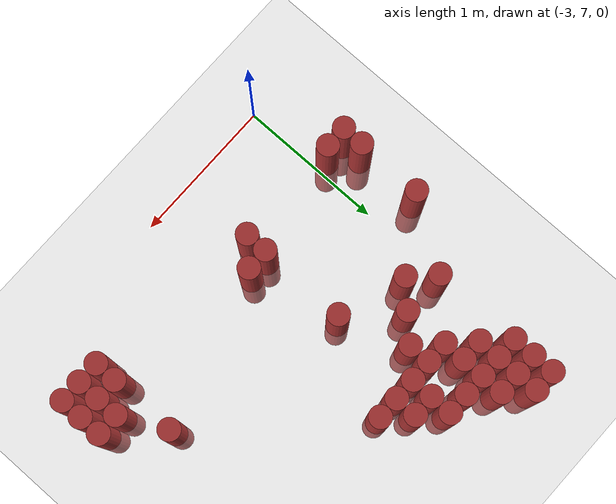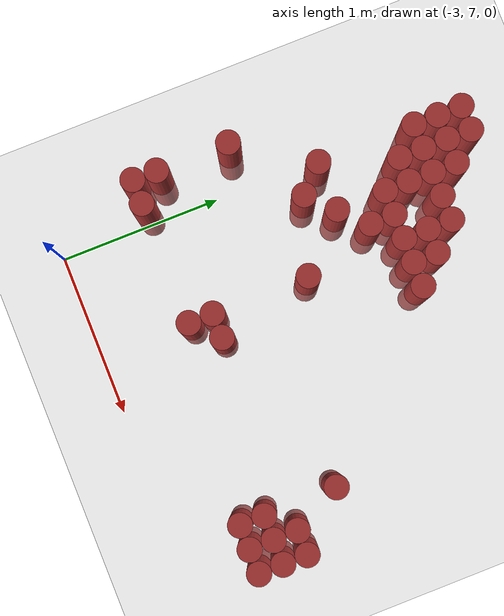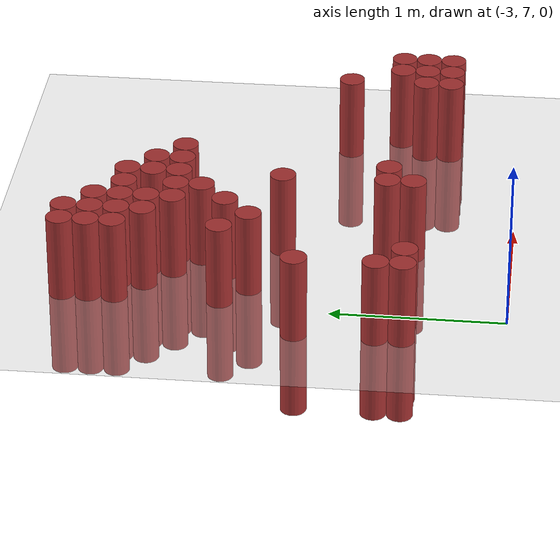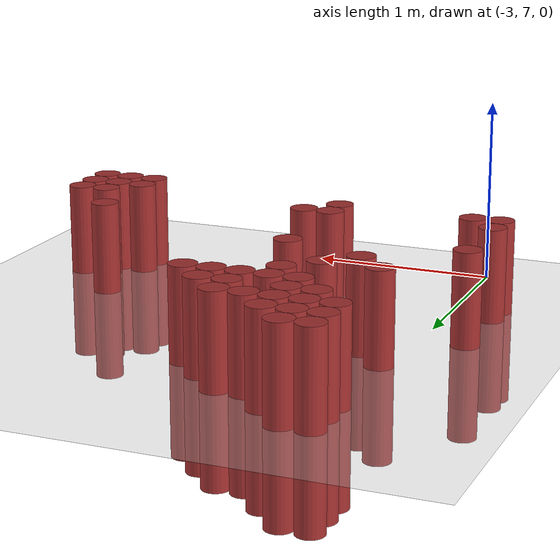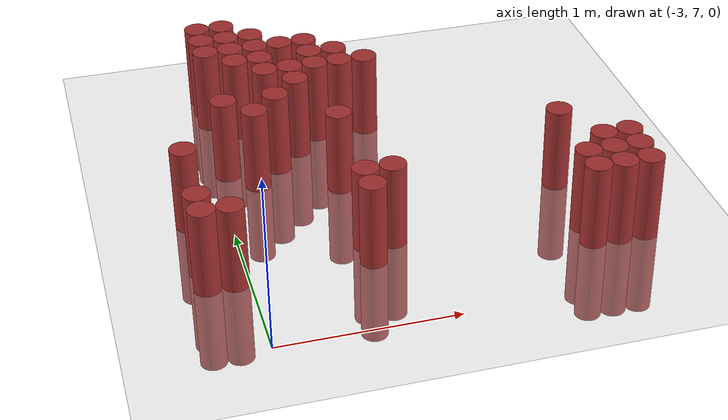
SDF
<sdf version="1.6">
 <world name="default">
  <model name="ground_plane">
   <static>1</static>
   <link name="link">
    <collision name="collision">
     <geometry><plane><normal>0 0 1</normal><size>100 100</size></plane></geometry>
     <surface><friction><ode><mu>100</mu><mu2>50</mu2></ode></friction></surface>
    </collision>
    <visual name="visual">
     <cast_shadows>0</cast_shadows>
     <geometry><plane><normal>0 0 1</normal><size>100 100</size></plane></geometry>
     <material>
      <script><uri>file://media/materials/scripts/gazebo.material</uri><name>Gazebo/Grey</name></script>
     </material>
    </visual>
   </link>
  </model>
  <model name="unit_cylinder_204">
   <static>1</static>
   <pose>-3.225000 7.575000 0.000000 0.000000 0.000000 0.000000</pose>
   <link name="link">
    <inertial>
     <mass>1</mass>
     <inertia><ixx>0.145833</ixx><ixy>0</ixy><ixz>0</ixz><iyy>0.145833</iyy><iyz>0</iyz><izz>0.125</izz></inertia>
    </inertial>
    <collision name="collision">
     <geometry><cylinder><radius>0.075000</radius><length>1</length></cylinder></geometry>
    </collision>
    <visual name="visual">
     <geometry><cylinder><radius>0.075000</radius><length>1</length></cylinder></geometry>
     <material>
      <ambient>0.648000 0.192000 0.192000 1</ambient>
      <diffuse>0.648000 0.192000 0.192000 1</diffuse>
     </material>
     <material>
      <script><name>Gazebo/Grey</name><uri>file://media/materials/scripts/gazebo.material</uri></script>
     </material>
    </visual>
    <sensor name="sensor_contact" type="contact"><contact><collision>collision</collision></contact></sensor>
   </link>
   <plugin filename="gz-sim-touchplugin-system" name="gz::sim::systems::TouchPlugin">
    <target>robot</target>
    <namespace>robot</namespace>
    <time>0.001</time>
    <enabled>true</enabled>
   </plugin>
  </model>
  <model name="unit_cylinder_205">
   <static>1</static>
   <pose>-3.225000 7.725000 0.000000 0.000000 0.000000 0.000000</pose>
   <link name="link">
    <inertial>
     <mass>1</mass>
     <inertia><ixx>0.145833</ixx><ixy>0</ixy><ixz>0</ixz><iyy>0.145833</iyy><iyz>0</iyz><izz>0.125</izz></inertia>
    </inertial>
    <collision name="collision">
     <geometry><cylinder><radius>0.075000</radius><length>1</length></cylinder></geometry>
    </collision>
    <visual name="visual">
     <geometry><cylinder><radius>0.075000</radius><length>1</length></cylinder></geometry>
     <material>
      <ambient>0.648000 0.192000 0.192000 1</ambient>
      <diffuse>0.648000 0.192000 0.192000 1</diffuse>
     </material>
     <material>
      <script><name>Gazebo/Grey</name><uri>file://media/materials/scripts/gazebo.material</uri></script>
     </material>
    </visual>
    <sensor name="sensor_contact" type="contact"><contact><collision>collision</collision></contact></sensor>
   </link>
   <plugin filename="gz-sim-touchplugin-system" name="gz::sim::systems::TouchPlugin">
    <target>robot</target>
    <namespace>robot</namespace>
    <time>0.001</time>
    <enabled>true</enabled>
   </plugin>
  </model>
  <model name="unit_cylinder_206">
   <static>1</static>
   <pose>-3.225000 8.175000 0.000000 0.000000 0.000000 0.000000</pose>
   <link name="link">
    <inertial>
     <mass>1</mass>
     <inertia><ixx>0.145833</ixx><ixy>0</ixy><ixz>0</ixz><iyy>0.145833</iyy><iyz>0</iyz><izz>0.125</izz></inertia>
    </inertial>
    <collision name="collision">
     <geometry><cylinder><radius>0.075000</radius><length>1</length></cylinder></geometry>
    </collision>
    <visual name="visual">
     <geometry><cylinder><radius>0.075000</radius><length>1</length></cylinder></geometry>
     <material>
      <ambient>0.648000 0.192000 0.192000 1</ambient>
      <diffuse>0.648000 0.192000 0.192000 1</diffuse>
     </material>
     <material>
      <script><name>Gazebo/Grey</name><uri>file://media/materials/scripts/gazebo.material</uri></script>
     </material>
    </visual>
    <sensor name="sensor_contact" type="contact"><contact><collision>collision</collision></contact></sensor>
   </link>
   <plugin filename="gz-sim-touchplugin-system" name="gz::sim::systems::TouchPlugin">
    <target>robot</target>
    <namespace>robot</namespace>
    <time>0.001</time>
    <enabled>true</enabled>
   </plugin>
  </model>
  <model name="unit_cylinder_209">
   <static>1</static>
   <pose>-3.075000 7.575000 0.000000 0.000000 0.000000 0.000000</pose>
   <link name="link">
    <inertial>
     <mass>1</mass>
     <inertia><ixx>0.145833</ixx><ixy>0</ixy><ixz>0</ixz><iyy>0.145833</iyy><iyz>0</iyz><izz>0.125</izz></inertia>
    </inertial>
    <collision name="collision">
     <geometry><cylinder><radius>0.075000</radius><length>1</length></cylinder></geometry>
    </collision>
    <visual name="visual">
     <geometry><cylinder><radius>0.075000</radius><length>1</length></cylinder></geometry>
     <material>
      <ambient>0.648000 0.192000 0.192000 1</ambient>
      <diffuse>0.648000 0.192000 0.192000 1</diffuse>
     </material>
     <material>
      <script><name>Gazebo/Grey</name><uri>file://media/materials/scripts/gazebo.material</uri></script>
     </material>
    </visual>
    <sensor name="sensor_contact" type="contact"><contact><collision>collision</collision></contact></sensor>
   </link>
   <plugin filename="gz-sim-touchplugin-system" name="gz::sim::systems::TouchPlugin">
    <target>robot</target>
    <namespace>robot</namespace>
    <time>0.001</time>
    <enabled>true</enabled>
   </plugin>
  </model>
  <model name="unit_cylinder_214">
   <static>1</static>
   <pose>-2.925000 8.625000 0.000000 0.000000 0.000000 0.000000</pose>
   <link name="link">
    <inertial>
     <mass>1</mass>
     <inertia><ixx>0.145833</ixx><ixy>0</ixy><ixz>0</ixz><iyy>0.145833</iyy><iyz>0</iyz><izz>0.125</izz></inertia>
    </inertial>
    <collision name="collision">
     <geometry><cylinder><radius>0.075000</radius><length>1</length></cylinder></geometry>
    </collision>
    <visual name="visual">
     <geometry><cylinder><radius>0.075000</radius><length>1</length></cylinder></geometry>
     <material>
      <ambient>0.648000 0.192000 0.192000 1</ambient>
      <diffuse>0.648000 0.192000 0.192000 1</diffuse>
     </material>
     <material>
      <script><name>Gazebo/Grey</name><uri>file://media/materials/scripts/gazebo.material</uri></script>
     </material>
    </visual>
    <sensor name="sensor_contact" type="contact"><contact><collision>collision</collision></contact></sensor>
   </link>
   <plugin filename="gz-sim-touchplugin-system" name="gz::sim::systems::TouchPlugin">
    <target>robot</target>
    <namespace>robot</namespace>
    <time>0.001</time>
    <enabled>true</enabled>
   </plugin>
  </model>
  <model name="unit_cylinder_215">
   <static>1</static>
   <pose>-2.925000 9.225000 0.000000 0.000000 0.000000 0.000000</pose>
   <link name="link">
    <inertial>
     <mass>1</mass>
     <inertia><ixx>0.145833</ixx><ixy>0</ixy><ixz>0</ixz><iyy>0.145833</iyy><iyz>0</iyz><izz>0.125</izz></inertia>
    </inertial>
    <collision name="collision">
     <geometry><cylinder><radius>0.075000</radius><length>1</length></cylinder></geometry>
    </collision>
    <visual name="visual">
     <geometry><cylinder><radius>0.075000</radius><length>1</length></cylinder></geometry>
     <material>
      <ambient>0.648000 0.192000 0.192000 1</ambient>
      <diffuse>0.648000 0.192000 0.192000 1</diffuse>
     </material>
     <material>
      <script><name>Gazebo/Grey</name><uri>file://media/materials/scripts/gazebo.material</uri></script>
     </material>
    </visual>
    <sensor name="sensor_contact" type="contact"><contact><collision>collision</collision></contact></sensor>
   </link>
   <plugin filename="gz-sim-touchplugin-system" name="gz::sim::systems::TouchPlugin">
    <target>robot</target>
    <namespace>robot</namespace>
    <time>0.001</time>
    <enabled>true</enabled>
   </plugin>
  </model>
  <model name="unit_cylinder_216">
   <static>1</static>
   <pose>-2.925000 9.375000 0.000000 0.000000 0.000000 0.000000</pose>
   <link name="link">
    <inertial>
     <mass>1</mass>
     <inertia><ixx>0.145833</ixx><ixy>0</ixy><ixz>0</ixz><iyy>0.145833</iyy><iyz>0</iyz><izz>0.125</izz></inertia>
    </inertial>
    <collision name="collision">
     <geometry><cylinder><radius>0.075000</radius><length>1</length></cylinder></geometry>
    </collision>
    <visual name="visual">
     <geometry><cylinder><radius>0.075000</radius><length>1</length></cylinder></geometry>
     <material>
      <ambient>0.648000 0.192000 0.192000 1</ambient>
      <diffuse>0.648000 0.192000 0.192000 1</diffuse>
     </material>
     <material>
      <script><name>Gazebo/Grey</name><uri>file://media/materials/scripts/gazebo.material</uri></script>
     </material>
    </visual>
    <sensor name="sensor_contact" type="contact"><contact><collision>collision</collision></contact></sensor>
   </link>
   <plugin filename="gz-sim-touchplugin-system" name="gz::sim::systems::TouchPlugin">
    <target>robot</target>
    <namespace>robot</namespace>
    <time>0.001</time>
    <enabled>true</enabled>
   </plugin>
  </model>
  <model name="unit_cylinder_217">
   <static>1</static>
   <pose>-2.925000 9.525000 0.000000 0.000000 0.000000 0.000000</pose>
   <link name="link">
    <inertial>
     <mass>1</mass>
     <inertia><ixx>0.145833</ixx><ixy>0</ixy><ixz>0</ixz><iyy>0.145833</iyy><iyz>0</iyz><izz>0.125</izz></inertia>
    </inertial>
    <collision name="collision">
     <geometry><cylinder><radius>0.075000</radius><length>1</length></cylinder></geometry>
    </collision>
    <visual name="visual">
     <geometry><cylinder><radius>0.075000</radius><length>1</length></cylinder></geometry>
     <material>
      <ambient>0.648000 0.192000 0.192000 1</ambient>
      <diffuse>0.648000 0.192000 0.192000 1</diffuse>
     </material>
     <material>
      <script><name>Gazebo/Grey</name><uri>file://media/materials/scripts/gazebo.material</uri></script>
     </material>
    </visual>
    <sensor name="sensor_contact" type="contact"><contact><collision>collision</collision></contact></sensor>
   </link>
   <plugin filename="gz-sim-touchplugin-system" name="gz::sim::systems::TouchPlugin">
    <target>robot</target>
    <namespace>robot</namespace>
    <time>0.001</time>
    <enabled>true</enabled>
   </plugin>
  </model>
  <model name="unit_cylinder_225">
   <static>1</static>
   <pose>-2.775000 8.475000 0.000000 0.000000 0.000000 0.000000</pose>
   <link name="link">
    <inertial>
     <mass>1</mass>
     <inertia><ixx>0.145833</ixx><ixy>0</ixy><ixz>0</ixz><iyy>0.145833</iyy><iyz>0</iyz><izz>0.125</izz></inertia>
    </inertial>
    <collision name="collision">
     <geometry><cylinder><radius>0.075000</radius><length>1</length></cylinder></geometry>
    </collision>
    <visual name="visual">
     <geometry><cylinder><radius>0.075000</radius><length>1</length></cylinder></geometry>
     <material>
      <ambient>0.648000 0.192000 0.192000 1</ambient>
      <diffuse>0.648000 0.192000 0.192000 1</diffuse>
     </material>
     <material>
      <script><name>Gazebo/Grey</name><uri>file://media/materials/scripts/gazebo.material</uri></script>
     </material>
    </visual>
    <sensor name="sensor_contact" type="contact"><contact><collision>collision</collision></contact></sensor>
   </link>
   <plugin filename="gz-sim-touchplugin-system" name="gz::sim::systems::TouchPlugin">
    <target>robot</target>
    <namespace>robot</namespace>
    <time>0.001</time>
    <enabled>true</enabled>
   </plugin>
  </model>
  <model name="unit_cylinder_226">
   <static>1</static>
   <pose>-2.775000 9.075000 0.000000 0.000000 0.000000 0.000000</pose>
   <link name="link">
    <inertial>
     <mass>1</mass>
     <inertia><ixx>0.145833</ixx><ixy>0</ixy><ixz>0</ixz><iyy>0.145833</iyy><iyz>0</iyz><izz>0.125</izz></inertia>
    </inertial>
    <collision name="collision">
     <geometry><cylinder><radius>0.075000</radius><length>1</length></cylinder></geometry>
    </collision>
    <visual name="visual">
     <geometry><cylinder><radius>0.075000</radius><length>1</length></cylinder></geometry>
     <material>
      <ambient>0.648000 0.192000 0.192000 1</ambient>
      <diffuse>0.648000 0.192000 0.192000 1</diffuse>
     </material>
     <material>
      <script><name>Gazebo/Grey</name><uri>file://media/materials/scripts/gazebo.material</uri></script>
     </material>
    </visual>
    <sensor name="sensor_contact" type="contact"><contact><collision>collision</collision></contact></sensor>
   </link>
   <plugin filename="gz-sim-touchplugin-system" name="gz::sim::systems::TouchPlugin">
    <target>robot</target>
    <namespace>robot</namespace>
    <time>0.001</time>
    <enabled>true</enabled>
   </plugin>
  </model>
  <model name="unit_cylinder_227">
   <static>1</static>
   <pose>-2.775000 9.225000 0.000000 0.000000 0.000000 0.000000</pose>
   <link name="link">
    <inertial>
     <mass>1</mass>
     <inertia><ixx>0.145833</ixx><ixy>0</ixy><ixz>0</ixz><iyy>0.145833</iyy><iyz>0</iyz><izz>0.125</izz></inertia>
    </inertial>
    <collision name="collision">
     <geometry><cylinder><radius>0.075000</radius><length>1</length></cylinder></geometry>
    </collision>
    <visual name="visual">
     <geometry><cylinder><radius>0.075000</radius><length>1</length></cylinder></geometry>
     <material>
      <ambient>0.648000 0.192000 0.192000 1</ambient>
      <diffuse>0.648000 0.192000 0.192000 1</diffuse>
     </material>
     <material>
      <script><name>Gazebo/Grey</name><uri>file://media/materials/scripts/gazebo.material</uri></script>
     </material>
    </visual>
    <sensor name="sensor_contact" type="contact"><contact><collision>collision</collision></contact></sensor>
   </link>
   <plugin filename="gz-sim-touchplugin-system" name="gz::sim::systems::TouchPlugin">
    <target>robot</target>
    <namespace>robot</namespace>
    <time>0.001</time>
    <enabled>true</enabled>
   </plugin>
  </model>
  <model name="unit_cylinder_228">
   <static>1</static>
   <pose>-2.775000 9.375000 0.000000 0.000000 0.000000 0.000000</pose>
   <link name="link">
    <inertial>
     <mass>1</mass>
     <inertia><ixx>0.145833</ixx><ixy>0</ixy><ixz>0</ixz><iyy>0.145833</iyy><iyz>0</iyz><izz>0.125</izz></inertia>
    </inertial>
    <collision name="collision">
     <geometry><cylinder><radius>0.075000</radius><length>1</length></cylinder></geometry>
    </collision>
    <visual name="visual">
     <geometry><cylinder><radius>0.075000</radius><length>1</length></cylinder></geometry>
     <material>
      <ambient>0.648000 0.192000 0.192000 1</ambient>
      <diffuse>0.648000 0.192000 0.192000 1</diffuse>
     </material>
     <material>
      <script><name>Gazebo/Grey</name><uri>file://media/materials/scripts/gazebo.material</uri></script>
     </material>
    </visual>
    <sensor name="sensor_contact" type="contact"><contact><collision>collision</collision></contact></sensor>
   </link>
   <plugin filename="gz-sim-touchplugin-system" name="gz::sim::systems::TouchPlugin">
    <target>robot</target>
    <namespace>robot</namespace>
    <time>0.001</time>
    <enabled>true</enabled>
   </plugin>
  </model>
  <model name="unit_cylinder_229">
   <static>1</static>
   <pose>-2.775000 9.525000 0.000000 0.000000 0.000000 0.000000</pose>
   <link name="link">
    <inertial>
     <mass>1</mass>
     <inertia><ixx>0.145833</ixx><ixy>0</ixy><ixz>0</ixz><iyy>0.145833</iyy><iyz>0</iyz><izz>0.125</izz></inertia>
    </inertial>
    <collision name="collision">
     <geometry><cylinder><radius>0.075000</radius><length>1</length></cylinder></geometry>
    </collision>
    <visual name="visual">
     <geometry><cylinder><radius>0.075000</radius><length>1</length></cylinder></geometry>
     <material>
      <ambient>0.648000 0.192000 0.192000 1</ambient>
      <diffuse>0.648000 0.192000 0.192000 1</diffuse>
     </material>
     <material>
      <script><name>Gazebo/Grey</name><uri>file://media/materials/scripts/gazebo.material</uri></script>
     </material>
    </visual>
    <sensor name="sensor_contact" type="contact"><contact><collision>collision</collision></contact></sensor>
   </link>
   <plugin filename="gz-sim-touchplugin-system" name="gz::sim::systems::TouchPlugin">
    <target>robot</target>
    <namespace>robot</namespace>
    <time>0.001</time>
    <enabled>true</enabled>
   </plugin>
  </model>
  <model name="unit_cylinder_237">
   <static>1</static>
   <pose>-2.625000 8.625000 0.000000 0.000000 0.000000 0.000000</pose>
   <link name="link">
    <inertial>
     <mass>1</mass>
     <inertia><ixx>0.145833</ixx><ixy>0</ixy><ixz>0</ixz><iyy>0.145833</iyy><iyz>0</iyz><izz>0.125</izz></inertia>
    </inertial>
    <collision name="collision">
     <geometry><cylinder><radius>0.075000</radius><length>1</length></cylinder></geometry>
    </collision>
    <visual name="visual">
     <geometry><cylinder><radius>0.075000</radius><length>1</length></cylinder></geometry>
     <material>
      <ambient>0.648000 0.192000 0.192000 1</ambient>
      <diffuse>0.648000 0.192000 0.192000 1</diffuse>
     </material>
     <material>
      <script><name>Gazebo/Grey</name><uri>file://media/materials/scripts/gazebo.material</uri></script>
     </material>
    </visual>
    <sensor name="sensor_contact" type="contact"><contact><collision>collision</collision></contact></sensor>
   </link>
   <plugin filename="gz-sim-touchplugin-system" name="gz::sim::systems::TouchPlugin">
    <target>robot</target>
    <namespace>robot</namespace>
    <time>0.001</time>
    <enabled>true</enabled>
   </plugin>
  </model>
  <model name="unit_cylinder_238">
   <static>1</static>
   <pose>-2.625000 8.925000 0.000000 0.000000 0.000000 0.000000</pose>
   <link name="link">
    <inertial>
     <mass>1</mass>
     <inertia><ixx>0.145833</ixx><ixy>0</ixy><ixz>0</ixz><iyy>0.145833</iyy><iyz>0</iyz><izz>0.125</izz></inertia>
    </inertial>
    <collision name="collision">
     <geometry><cylinder><radius>0.075000</radius><length>1</length></cylinder></geometry>
    </collision>
    <visual name="visual">
     <geometry><cylinder><radius>0.075000</radius><length>1</length></cylinder></geometry>
     <material>
      <ambient>0.648000 0.192000 0.192000 1</ambient>
      <diffuse>0.648000 0.192000 0.192000 1</diffuse>
     </material>
     <material>
      <script><name>Gazebo/Grey</name><uri>file://media/materials/scripts/gazebo.material</uri></script>
     </material>
    </visual>
    <sensor name="sensor_contact" type="contact"><contact><collision>collision</collision></contact></sensor>
   </link>
   <plugin filename="gz-sim-touchplugin-system" name="gz::sim::systems::TouchPlugin">
    <target>robot</target>
    <namespace>robot</namespace>
    <time>0.001</time>
    <enabled>true</enabled>
   </plugin>
  </model>
  <model name="unit_cylinder_239">
   <static>1</static>
   <pose>-2.625000 9.075000 0.000000 0.000000 0.000000 0.000000</pose>
   <link name="link">
    <inertial>
     <mass>1</mass>
     <inertia><ixx>0.145833</ixx><ixy>0</ixy><ixz>0</ixz><iyy>0.145833</iyy><iyz>0</iyz><izz>0.125</izz></inertia>
    </inertial>
    <collision name="collision">
     <geometry><cylinder><radius>0.075000</radius><length>1</length></cylinder></geometry>
    </collision>
    <visual name="visual">
     <geometry><cylinder><radius>0.075000</radius><length>1</length></cylinder></geometry>
     <material>
      <ambient>0.648000 0.192000 0.192000 1</ambient>
      <diffuse>0.648000 0.192000 0.192000 1</diffuse>
     </material>
     <material>
      <script><name>Gazebo/Grey</name><uri>file://media/materials/scripts/gazebo.material</uri></script>
     </material>
    </visual>
    <sensor name="sensor_contact" type="contact"><contact><collision>collision</collision></contact></sensor>
   </link>
   <plugin filename="gz-sim-touchplugin-system" name="gz::sim::systems::TouchPlugin">
    <target>robot</target>
    <namespace>robot</namespace>
    <time>0.001</time>
    <enabled>true</enabled>
   </plugin>
  </model>
  <model name="unit_cylinder_240">
   <static>1</static>
   <pose>-2.625000 9.225000 0.000000 0.000000 0.000000 0.000000</pose>
   <link name="link">
    <inertial>
     <mass>1</mass>
     <inertia><ixx>0.145833</ixx><ixy>0</ixy><ixz>0</ixz><iyy>0.145833</iyy><iyz>0</iyz><izz>0.125</izz></inertia>
    </inertial>
    <collision name="collision">
     <geometry><cylinder><radius>0.075000</radius><length>1</length></cylinder></geometry>
    </collision>
    <visual name="visual">
     <geometry><cylinder><radius>0.075000</radius><length>1</length></cylinder></geometry>
     <material>
      <ambient>0.648000 0.192000 0.192000 1</ambient>
      <diffuse>0.648000 0.192000 0.192000 1</diffuse>
     </material>
     <material>
      <script><name>Gazebo/Grey</name><uri>file://media/materials/scripts/gazebo.material</uri></script>
     </material>
    </visual>
    <sensor name="sensor_contact" type="contact"><contact><collision>collision</collision></contact></sensor>
   </link>
   <plugin filename="gz-sim-touchplugin-system" name="gz::sim::systems::TouchPlugin">
    <target>robot</target>
    <namespace>robot</namespace>
    <time>0.001</time>
    <enabled>true</enabled>
   </plugin>
  </model>
  <model name="unit_cylinder_241">
   <static>1</static>
   <pose>-2.625000 9.375000 0.000000 0.000000 0.000000 0.000000</pose>
   <link name="link">
    <inertial>
     <mass>1</mass>
     <inertia><ixx>0.145833</ixx><ixy>0</ixy><ixz>0</ixz><iyy>0.145833</iyy><iyz>0</iyz><izz>0.125</izz></inertia>
    </inertial>
    <collision name="collision">
     <geometry><cylinder><radius>0.075000</radius><length>1</length></cylinder></geometry>
    </collision>
    <visual name="visual">
     <geometry><cylinder><radius>0.075000</radius><length>1</length></cylinder></geometry>
     <material>
      <ambient>0.648000 0.192000 0.192000 1</ambient>
      <diffuse>0.648000 0.192000 0.192000 1</diffuse>
     </material>
     <material>
      <script><name>Gazebo/Grey</name><uri>file://media/materials/scripts/gazebo.material</uri></script>
     </material>
    </visual>
    <sensor name="sensor_contact" type="contact"><contact><collision>collision</collision></contact></sensor>
   </link>
   <plugin filename="gz-sim-touchplugin-system" name="gz::sim::systems::TouchPlugin">
    <target>robot</target>
    <namespace>robot</namespace>
    <time>0.001</time>
    <enabled>true</enabled>
   </plugin>
  </model>
  <model name="unit_cylinder_247">
   <static>1</static>
   <pose>-2.475000 8.775000 0.000000 0.000000 0.000000 0.000000</pose>
   <link name="link">
    <inertial>
     <mass>1</mass>
     <inertia><ixx>0.145833</ixx><ixy>0</ixy><ixz>0</ixz><iyy>0.145833</iyy><iyz>0</iyz><izz>0.125</izz></inertia>
    </inertial>
    <collision name="collision">
     <geometry><cylinder><radius>0.075000</radius><length>1</length></cylinder></geometry>
    </collision>
    <visual name="visual">
     <geometry><cylinder><radius>0.075000</radius><length>1</length></cylinder></geometry>
     <material>
      <ambient>0.648000 0.192000 0.192000 1</ambient>
      <diffuse>0.648000 0.192000 0.192000 1</diffuse>
     </material>
     <material>
      <script><name>Gazebo/Grey</name><uri>file://media/materials/scripts/gazebo.material</uri></script>
     </material>
    </visual>
    <sensor name="sensor_contact" type="contact"><contact><collision>collision</collision></contact></sensor>
   </link>
   <plugin filename="gz-sim-touchplugin-system" name="gz::sim::systems::TouchPlugin">
    <target>robot</target>
    <namespace>robot</namespace>
    <time>0.001</time>
    <enabled>true</enabled>
   </plugin>
  </model>
  <model name="unit_cylinder_248">
   <static>1</static>
   <pose>-2.475000 8.925000 0.000000 0.000000 0.000000 0.000000</pose>
   <link name="link">
    <inertial>
     <mass>1</mass>
     <inertia><ixx>0.145833</ixx><ixy>0</ixy><ixz>0</ixz><iyy>0.145833</iyy><iyz>0</iyz><izz>0.125</izz></inertia>
    </inertial>
    <collision name="collision">
     <geometry><cylinder><radius>0.075000</radius><length>1</length></cylinder></geometry>
    </collision>
    <visual name="visual">
     <geometry><cylinder><radius>0.075000</radius><length>1</length></cylinder></geometry>
     <material>
      <ambient>0.648000 0.192000 0.192000 1</ambient>
      <diffuse>0.648000 0.192000 0.192000 1</diffuse>
     </material>
     <material>
      <script><name>Gazebo/Grey</name><uri>file://media/materials/scripts/gazebo.material</uri></script>
     </material>
    </visual>
    <sensor name="sensor_contact" type="contact"><contact><collision>collision</collision></contact></sensor>
   </link>
   <plugin filename="gz-sim-touchplugin-system" name="gz::sim::systems::TouchPlugin">
    <target>robot</target>
    <namespace>robot</namespace>
    <time>0.001</time>
    <enabled>true</enabled>
   </plugin>
  </model>
  <model name="unit_cylinder_249">
   <static>1</static>
   <pose>-2.475000 9.225000 0.000000 0.000000 0.000000 0.000000</pose>
   <link name="link">
    <inertial>
     <mass>1</mass>
     <inertia><ixx>0.145833</ixx><ixy>0</ixy><ixz>0</ixz><iyy>0.145833</iyy><iyz>0</iyz><izz>0.125</izz></inertia>
    </inertial>
    <collision name="collision">
     <geometry><cylinder><radius>0.075000</radius><length>1</length></cylinder></geometry>
    </collision>
    <visual name="visual">
     <geometry><cylinder><radius>0.075000</radius><length>1</length></cylinder></geometry>
     <material>
      <ambient>0.648000 0.192000 0.192000 1</ambient>
      <diffuse>0.648000 0.192000 0.192000 1</diffuse>
     </material>
     <material>
      <script><name>Gazebo/Grey</name><uri>file://media/materials/scripts/gazebo.material</uri></script>
     </material>
    </visual>
    <sensor name="sensor_contact" type="contact"><contact><collision>collision</collision></contact></sensor>
   </link>
   <plugin filename="gz-sim-touchplugin-system" name="gz::sim::systems::TouchPlugin">
    <target>robot</target>
    <namespace>robot</namespace>
    <time>0.001</time>
    <enabled>true</enabled>
   </plugin>
  </model>
  <model name="unit_cylinder_254">
   <static>1</static>
   <pose>-2.325000 7.575000 0.000000 0.000000 0.000000 0.000000</pose>
   <link name="link">
    <inertial>
     <mass>1</mass>
     <inertia><ixx>0.145833</ixx><ixy>0</ixy><ixz>0</ixz><iyy>0.145833</iyy><iyz>0</iyz><izz>0.125</izz></inertia>
    </inertial>
    <collision name="collision">
     <geometry><cylinder><radius>0.075000</radius><length>1</length></cylinder></geometry>
    </collision>
    <visual name="visual">
     <geometry><cylinder><radius>0.075000</radius><length>1</length></cylinder></geometry>
     <material>
      <ambient>0.648000 0.192000 0.192000 1</ambient>
      <diffuse>0.648000 0.192000 0.192000 1</diffuse>
     </material>
     <material>
      <script><name>Gazebo/Grey</name><uri>file://media/materials/scripts/gazebo.material</uri></script>
     </material>
    </visual>
    <sensor name="sensor_contact" type="contact"><contact><collision>collision</collision></contact></sensor>
   </link>
   <plugin filename="gz-sim-touchplugin-system" name="gz::sim::systems::TouchPlugin">
    <target>robot</target>
    <namespace>robot</namespace>
    <time>0.001</time>
    <enabled>true</enabled>
   </plugin>
  </model>
  <model name="unit_cylinder_255">
   <static>1</static>
   <pose>-2.325000 7.725000 0.000000 0.000000 0.000000 0.000000</pose>
   <link name="link">
    <inertial>
     <mass>1</mass>
     <inertia><ixx>0.145833</ixx><ixy>0</ixy><ixz>0</ixz><iyy>0.145833</iyy><iyz>0</iyz><izz>0.125</izz></inertia>
    </inertial>
    <collision name="collision">
     <geometry><cylinder><radius>0.075000</radius><length>1</length></cylinder></geometry>
    </collision>
    <visual name="visual">
     <geometry><cylinder><radius>0.075000</radius><length>1</length></cylinder></geometry>
     <material>
      <ambient>0.648000 0.192000 0.192000 1</ambient>
      <diffuse>0.648000 0.192000 0.192000 1</diffuse>
     </material>
     <material>
      <script><name>Gazebo/Grey</name><uri>file://media/materials/scripts/gazebo.material</uri></script>
     </material>
    </visual>
    <sensor name="sensor_contact" type="contact"><contact><collision>collision</collision></contact></sensor>
   </link>
   <plugin filename="gz-sim-touchplugin-system" name="gz::sim::systems::TouchPlugin">
    <target>robot</target>
    <namespace>robot</namespace>
    <time>0.001</time>
    <enabled>true</enabled>
   </plugin>
  </model>
  <model name="unit_cylinder_256">
   <static>1</static>
   <pose>-2.325000 8.325000 0.000000 0.000000 0.000000 0.000000</pose>
   <link name="link">
    <inertial>
     <mass>1</mass>
     <inertia><ixx>0.145833</ixx><ixy>0</ixy><ixz>0</ixz><iyy>0.145833</iyy><iyz>0</iyz><izz>0.125</izz></inertia>
    </inertial>
    <collision name="collision">
     <geometry><cylinder><radius>0.075000</radius><length>1</length></cylinder></geometry>
    </collision>
    <visual name="visual">
     <geometry><cylinder><radius>0.075000</radius><length>1</length></cylinder></geometry>
     <material>
      <ambient>0.648000 0.192000 0.192000 1</ambient>
      <diffuse>0.648000 0.192000 0.192000 1</diffuse>
     </material>
     <material>
      <script><name>Gazebo/Grey</name><uri>file://media/materials/scripts/gazebo.material</uri></script>
     </material>
    </visual>
    <sensor name="sensor_contact" type="contact"><contact><collision>collision</collision></contact></sensor>
   </link>
   <plugin filename="gz-sim-touchplugin-system" name="gz::sim::systems::TouchPlugin">
    <target>robot</target>
    <namespace>robot</namespace>
    <time>0.001</time>
    <enabled>true</enabled>
   </plugin>
  </model>
  <model name="unit_cylinder_257">
   <static>1</static>
   <pose>-2.325000 8.925000 0.000000 0.000000 0.000000 0.000000</pose>
   <link name="link">
    <inertial>
     <mass>1</mass>
     <inertia><ixx>0.145833</ixx><ixy>0</ixy><ixz>0</ixz><iyy>0.145833</iyy><iyz>0</iyz><izz>0.125</izz></inertia>
    </inertial>
    <collision name="collision">
     <geometry><cylinder><radius>0.075000</radius><length>1</length></cylinder></geometry>
    </collision>
    <visual name="visual">
     <geometry><cylinder><radius>0.075000</radius><length>1</length></cylinder></geometry>
     <material>
      <ambient>0.648000 0.192000 0.192000 1</ambient>
      <diffuse>0.648000 0.192000 0.192000 1</diffuse>
     </material>
     <material>
      <script><name>Gazebo/Grey</name><uri>file://media/materials/scripts/gazebo.material</uri></script>
     </material>
    </visual>
    <sensor name="sensor_contact" type="contact"><contact><collision>collision</collision></contact></sensor>
   </link>
   <plugin filename="gz-sim-touchplugin-system" name="gz::sim::systems::TouchPlugin">
    <target>robot</target>
    <namespace>robot</namespace>
    <time>0.001</time>
    <enabled>true</enabled>
   </plugin>
  </model>
  <model name="unit_cylinder_258">
   <static>1</static>
   <pose>-2.325000 9.075000 0.000000 0.000000 0.000000 0.000000</pose>
   <link name="link">
    <inertial>
     <mass>1</mass>
     <inertia><ixx>0.145833</ixx><ixy>0</ixy><ixz>0</ixz><iyy>0.145833</iyy><iyz>0</iyz><izz>0.125</izz></inertia>
    </inertial>
    <collision name="collision">
     <geometry><cylinder><radius>0.075000</radius><length>1</length></cylinder></geometry>
    </collision>
    <visual name="visual">
     <geometry><cylinder><radius>0.075000</radius><length>1</length></cylinder></geometry>
     <material>
      <ambient>0.648000 0.192000 0.192000 1</ambient>
      <diffuse>0.648000 0.192000 0.192000 1</diffuse>
     </material>
     <material>
      <script><name>Gazebo/Grey</name><uri>file://media/materials/scripts/gazebo.material</uri></script>
     </material>
    </visual>
    <sensor name="sensor_contact" type="contact"><contact><collision>collision</collision></contact></sensor>
   </link>
   <plugin filename="gz-sim-touchplugin-system" name="gz::sim::systems::TouchPlugin">
    <target>robot</target>
    <namespace>robot</namespace>
    <time>0.001</time>
    <enabled>true</enabled>
   </plugin>
  </model>
  <model name="unit_cylinder_259">
   <static>1</static>
   <pose>-2.325000 9.225000 0.000000 0.000000 0.000000 0.000000</pose>
   <link name="link">
    <inertial>
     <mass>1</mass>
     <inertia><ixx>0.145833</ixx><ixy>0</ixy><ixz>0</ixz><iyy>0.145833</iyy><iyz>0</iyz><izz>0.125</izz></inertia>
    </inertial>
    <collision name="collision">
     <geometry><cylinder><radius>0.075000</radius><length>1</length></cylinder></geometry>
    </collision>
    <visual name="visual">
     <geometry><cylinder><radius>0.075000</radius><length>1</length></cylinder></geometry>
     <material>
      <ambient>0.648000 0.192000 0.192000 1</ambient>
      <diffuse>0.648000 0.192000 0.192000 1</diffuse>
     </material>
     <material>
      <script><name>Gazebo/Grey</name><uri>file://media/materials/scripts/gazebo.material</uri></script>
     </material>
    </visual>
    <sensor name="sensor_contact" type="contact"><contact><collision>collision</collision></contact></sensor>
   </link>
   <plugin filename="gz-sim-touchplugin-system" name="gz::sim::systems::TouchPlugin">
    <target>robot</target>
    <namespace>robot</namespace>
    <time>0.001</time>
    <enabled>true</enabled>
   </plugin>
  </model>
  <model name="unit_cylinder_265">
   <static>1</static>
   <pose>-2.175000 7.725000 0.000000 0.000000 0.000000 0.000000</pose>
   <link name="link">
    <inertial>
     <mass>1</mass>
     <inertia><ixx>0.145833</ixx><ixy>0</ixy><ixz>0</ixz><iyy>0.145833</iyy><iyz>0</iyz><izz>0.125</izz></inertia>
    </inertial>
    <collision name="collision">
     <geometry><cylinder><radius>0.075000</radius><length>1</length></cylinder></geometry>
    </collision>
    <visual name="visual">
     <geometry><cylinder><radius>0.075000</radius><length>1</length></cylinder></geometry>
     <material>
      <ambient>0.648000 0.192000 0.192000 1</ambient>
      <diffuse>0.648000 0.192000 0.192000 1</diffuse>
     </material>
     <material>
      <script><name>Gazebo/Grey</name><uri>file://media/materials/scripts/gazebo.material</uri></script>
     </material>
    </visual>
    <sensor name="sensor_contact" type="contact"><contact><collision>collision</collision></contact></sensor>
   </link>
   <plugin filename="gz-sim-touchplugin-system" name="gz::sim::systems::TouchPlugin">
    <target>robot</target>
    <namespace>robot</namespace>
    <time>0.001</time>
    <enabled>true</enabled>
   </plugin>
  </model>
  <model name="unit_cylinder_266">
   <static>1</static>
   <pose>-2.175000 8.925000 0.000000 0.000000 0.000000 0.000000</pose>
   <link name="link">
    <inertial>
     <mass>1</mass>
     <inertia><ixx>0.145833</ixx><ixy>0</ixy><ixz>0</ixz><iyy>0.145833</iyy><iyz>0</iyz><izz>0.125</izz></inertia>
    </inertial>
    <collision name="collision">
     <geometry><cylinder><radius>0.075000</radius><length>1</length></cylinder></geometry>
    </collision>
    <visual name="visual">
     <geometry><cylinder><radius>0.075000</radius><length>1</length></cylinder></geometry>
     <material>
      <ambient>0.648000 0.192000 0.192000 1</ambient>
      <diffuse>0.648000 0.192000 0.192000 1</diffuse>
     </material>
     <material>
      <script><name>Gazebo/Grey</name><uri>file://media/materials/scripts/gazebo.material</uri></script>
     </material>
    </visual>
    <sensor name="sensor_contact" type="contact"><contact><collision>collision</collision></contact></sensor>
   </link>
   <plugin filename="gz-sim-touchplugin-system" name="gz::sim::systems::TouchPlugin">
    <target>robot</target>
    <namespace>robot</namespace>
    <time>0.001</time>
    <enabled>true</enabled>
   </plugin>
  </model>
  <model name="unit_cylinder_267">
   <static>1</static>
   <pose>-2.175000 9.075000 0.000000 0.000000 0.000000 0.000000</pose>
   <link name="link">
    <inertial>
     <mass>1</mass>
     <inertia><ixx>0.145833</ixx><ixy>0</ixy><ixz>0</ixz><iyy>0.145833</iyy><iyz>0</iyz><izz>0.125</izz></inertia>
    </inertial>
    <collision name="collision">
     <geometry><cylinder><radius>0.075000</radius><length>1</length></cylinder></geometry>
    </collision>
    <visual name="visual">
     <geometry><cylinder><radius>0.075000</radius><length>1</length></cylinder></geometry>
     <material>
      <ambient>0.648000 0.192000 0.192000 1</ambient>
      <diffuse>0.648000 0.192000 0.192000 1</diffuse>
     </material>
     <material>
      <script><name>Gazebo/Grey</name><uri>file://media/materials/scripts/gazebo.material</uri></script>
     </material>
    </visual>
    <sensor name="sensor_contact" type="contact"><contact><collision>collision</collision></contact></sensor>
   </link>
   <plugin filename="gz-sim-touchplugin-system" name="gz::sim::systems::TouchPlugin">
    <target>robot</target>
    <namespace>robot</namespace>
    <time>0.001</time>
    <enabled>true</enabled>
   </plugin>
  </model>
  <model name="unit_cylinder_273">
   <static>1</static>
   <pose>-2.025000 8.925000 0.000000 0.000000 0.000000 0.000000</pose>
   <link name="link">
    <inertial>
     <mass>1</mass>
     <inertia><ixx>0.145833</ixx><ixy>0</ixy><ixz>0</ixz><iyy>0.145833</iyy><iyz>0</iyz><izz>0.125</izz></inertia>
    </inertial>
    <collision name="collision">
     <geometry><cylinder><radius>0.075000</radius><length>1</length></cylinder></geometry>
    </collision>
    <visual name="visual">
     <geometry><cylinder><radius>0.075000</radius><length>1</length></cylinder></geometry>
     <material>
      <ambient>0.648000 0.192000 0.192000 1</ambient>
      <diffuse>0.648000 0.192000 0.192000 1</diffuse>
     </material>
     <material>
      <script><name>Gazebo/Grey</name><uri>file://media/materials/scripts/gazebo.material</uri></script>
     </material>
    </visual>
    <sensor name="sensor_contact" type="contact"><contact><collision>collision</collision></contact></sensor>
   </link>
   <plugin filename="gz-sim-touchplugin-system" name="gz::sim::systems::TouchPlugin">
    <target>robot</target>
    <namespace>robot</namespace>
    <time>0.001</time>
    <enabled>true</enabled>
   </plugin>
  </model>
  <model name="unit_cylinder_275">
   <static>1</static>
   <pose>-1.125000 7.425000 0.000000 0.000000 0.000000 0.000000</pose>
   <link name="link">
    <inertial>
     <mass>1</mass>
     <inertia><ixx>0.145833</ixx><ixy>0</ixy><ixz>0</ixz><iyy>0.145833</iyy><iyz>0</iyz><izz>0.125</izz></inertia>
    </inertial>
    <collision name="collision">
     <geometry><cylinder><radius>0.075000</radius><length>1</length></cylinder></geometry>
    </collision>
    <visual name="visual">
     <geometry><cylinder><radius>0.075000</radius><length>1</length></cylinder></geometry>
     <material>
      <ambient>0.648000 0.192000 0.192000 1</ambient>
      <diffuse>0.648000 0.192000 0.192000 1</diffuse>
     </material>
     <material>
      <script><name>Gazebo/Grey</name><uri>file://media/materials/scripts/gazebo.material</uri></script>
     </material>
    </visual>
    <sensor name="sensor_contact" type="contact"><contact><collision>collision</collision></contact></sensor>
   </link>
   <plugin filename="gz-sim-touchplugin-system" name="gz::sim::systems::TouchPlugin">
    <target>robot</target>
    <namespace>robot</namespace>
    <time>0.001</time>
    <enabled>true</enabled>
   </plugin>
  </model>
  <model name="unit_cylinder_276">
   <static>1</static>
   <pose>-1.125000 7.575000 0.000000 0.000000 0.000000 0.000000</pose>
   <link name="link">
    <inertial>
     <mass>1</mass>
     <inertia><ixx>0.145833</ixx><ixy>0</ixy><ixz>0</ixz><iyy>0.145833</iyy><iyz>0</iyz><izz>0.125</izz></inertia>
    </inertial>
    <collision name="collision">
     <geometry><cylinder><radius>0.075000</radius><length>1</length></cylinder></geometry>
    </collision>
    <visual name="visual">
     <geometry><cylinder><radius>0.075000</radius><length>1</length></cylinder></geometry>
     <material>
      <ambient>0.648000 0.192000 0.192000 1</ambient>
      <diffuse>0.648000 0.192000 0.192000 1</diffuse>
     </material>
     <material>
      <script><name>Gazebo/Grey</name><uri>file://media/materials/scripts/gazebo.material</uri></script>
     </material>
    </visual>
    <sensor name="sensor_contact" type="contact"><contact><collision>collision</collision></contact></sensor>
   </link>
   <plugin filename="gz-sim-touchplugin-system" name="gz::sim::systems::TouchPlugin">
    <target>robot</target>
    <namespace>robot</namespace>
    <time>0.001</time>
    <enabled>true</enabled>
   </plugin>
  </model>
  <model name="unit_cylinder_277">
   <static>1</static>
   <pose>-1.125000 8.025000 0.000000 0.000000 0.000000 0.000000</pose>
   <link name="link">
    <inertial>
     <mass>1</mass>
     <inertia><ixx>0.145833</ixx><ixy>0</ixy><ixz>0</ixz><iyy>0.145833</iyy><iyz>0</iyz><izz>0.125</izz></inertia>
    </inertial>
    <collision name="collision">
     <geometry><cylinder><radius>0.075000</radius><length>1</length></cylinder></geometry>
    </collision>
    <visual name="visual">
     <geometry><cylinder><radius>0.075000</radius><length>1</length></cylinder></geometry>
     <material>
      <ambient>0.648000 0.192000 0.192000 1</ambient>
      <diffuse>0.648000 0.192000 0.192000 1</diffuse>
     </material>
     <material>
      <script><name>Gazebo/Grey</name><uri>file://media/materials/scripts/gazebo.material</uri></script>
     </material>
    </visual>
    <sensor name="sensor_contact" type="contact"><contact><collision>collision</collision></contact></sensor>
   </link>
   <plugin filename="gz-sim-touchplugin-system" name="gz::sim::systems::TouchPlugin">
    <target>robot</target>
    <namespace>robot</namespace>
    <time>0.001</time>
    <enabled>true</enabled>
   </plugin>
  </model>
  <model name="unit_cylinder_281">
   <static>1</static>
   <pose>-0.975000 7.425000 0.000000 0.000000 0.000000 0.000000</pose>
   <link name="link">
    <inertial>
     <mass>1</mass>
     <inertia><ixx>0.145833</ixx><ixy>0</ixy><ixz>0</ixz><iyy>0.145833</iyy><iyz>0</iyz><izz>0.125</izz></inertia>
    </inertial>
    <collision name="collision">
     <geometry><cylinder><radius>0.075000</radius><length>1</length></cylinder></geometry>
    </collision>
    <visual name="visual">
     <geometry><cylinder><radius>0.075000</radius><length>1</length></cylinder></geometry>
     <material>
      <ambient>0.648000 0.192000 0.192000 1</ambient>
      <diffuse>0.648000 0.192000 0.192000 1</diffuse>
     </material>
     <material>
      <script><name>Gazebo/Grey</name><uri>file://media/materials/scripts/gazebo.material</uri></script>
     </material>
    </visual>
    <sensor name="sensor_contact" type="contact"><contact><collision>collision</collision></contact></sensor>
   </link>
   <plugin filename="gz-sim-touchplugin-system" name="gz::sim::systems::TouchPlugin">
    <target>robot</target>
    <namespace>robot</namespace>
    <time>0.001</time>
    <enabled>true</enabled>
   </plugin>
  </model>
  <model name="unit_cylinder_282">
   <static>1</static>
   <pose>-0.975000 7.575000 0.000000 0.000000 0.000000 0.000000</pose>
   <link name="link">
    <inertial>
     <mass>1</mass>
     <inertia><ixx>0.145833</ixx><ixy>0</ixy><ixz>0</ixz><iyy>0.145833</iyy><iyz>0</iyz><izz>0.125</izz></inertia>
    </inertial>
    <collision name="collision">
     <geometry><cylinder><radius>0.075000</radius><length>1</length></cylinder></geometry>
    </collision>
    <visual name="visual">
     <geometry><cylinder><radius>0.075000</radius><length>1</length></cylinder></geometry>
     <material>
      <ambient>0.648000 0.192000 0.192000 1</ambient>
      <diffuse>0.648000 0.192000 0.192000 1</diffuse>
     </material>
     <material>
      <script><name>Gazebo/Grey</name><uri>file://media/materials/scripts/gazebo.material</uri></script>
     </material>
    </visual>
    <sensor name="sensor_contact" type="contact"><contact><collision>collision</collision></contact></sensor>
   </link>
   <plugin filename="gz-sim-touchplugin-system" name="gz::sim::systems::TouchPlugin">
    <target>robot</target>
    <namespace>robot</namespace>
    <time>0.001</time>
    <enabled>true</enabled>
   </plugin>
  </model>
  <model name="unit_cylinder_283">
   <static>1</static>
   <pose>-0.975000 7.725000 0.000000 0.000000 0.000000 0.000000</pose>
   <link name="link">
    <inertial>
     <mass>1</mass>
     <inertia><ixx>0.145833</ixx><ixy>0</ixy><ixz>0</ixz><iyy>0.145833</iyy><iyz>0</iyz><izz>0.125</izz></inertia>
    </inertial>
    <collision name="collision">
     <geometry><cylinder><radius>0.075000</radius><length>1</length></cylinder></geometry>
    </collision>
    <visual name="visual">
     <geometry><cylinder><radius>0.075000</radius><length>1</length></cylinder></geometry>
     <material>
      <ambient>0.648000 0.192000 0.192000 1</ambient>
      <diffuse>0.648000 0.192000 0.192000 1</diffuse>
     </material>
     <material>
      <script><name>Gazebo/Grey</name><uri>file://media/materials/scripts/gazebo.material</uri></script>
     </material>
    </visual>
    <sensor name="sensor_contact" type="contact"><contact><collision>collision</collision></contact></sensor>
   </link>
   <plugin filename="gz-sim-touchplugin-system" name="gz::sim::systems::TouchPlugin">
    <target>robot</target>
    <namespace>robot</namespace>
    <time>0.001</time>
    <enabled>true</enabled>
   </plugin>
  </model>
  <model name="unit_cylinder_287">
   <static>1</static>
   <pose>-0.825000 7.425000 0.000000 0.000000 0.000000 0.000000</pose>
   <link name="link">
    <inertial>
     <mass>1</mass>
     <inertia><ixx>0.145833</ixx><ixy>0</ixy><ixz>0</ixz><iyy>0.145833</iyy><iyz>0</iyz><izz>0.125</izz></inertia>
    </inertial>
    <collision name="collision">
     <geometry><cylinder><radius>0.075000</radius><length>1</length></cylinder></geometry>
    </collision>
    <visual name="visual">
     <geometry><cylinder><radius>0.075000</radius><length>1</length></cylinder></geometry>
     <material>
      <ambient>0.648000 0.192000 0.192000 1</ambient>
      <diffuse>0.648000 0.192000 0.192000 1</diffuse>
     </material>
     <material>
      <script><name>Gazebo/Grey</name><uri>file://media/materials/scripts/gazebo.material</uri></script>
     </material>
    </visual>
    <sensor name="sensor_contact" type="contact"><contact><collision>collision</collision></contact></sensor>
   </link>
   <plugin filename="gz-sim-touchplugin-system" name="gz::sim::systems::TouchPlugin">
    <target>robot</target>
    <namespace>robot</namespace>
    <time>0.001</time>
    <enabled>true</enabled>
   </plugin>
  </model>
  <model name="unit_cylinder_288">
   <static>1</static>
   <pose>-0.825000 7.575000 0.000000 0.000000 0.000000 0.000000</pose>
   <link name="link">
    <inertial>
     <mass>1</mass>
     <inertia><ixx>0.145833</ixx><ixy>0</ixy><ixz>0</ixz><iyy>0.145833</iyy><iyz>0</iyz><izz>0.125</izz></inertia>
    </inertial>
    <collision name="collision">
     <geometry><cylinder><radius>0.075000</radius><length>1</length></cylinder></geometry>
    </collision>
    <visual name="visual">
     <geometry><cylinder><radius>0.075000</radius><length>1</length></cylinder></geometry>
     <material>
      <ambient>0.648000 0.192000 0.192000 1</ambient>
      <diffuse>0.648000 0.192000 0.192000 1</diffuse>
     </material>
     <material>
      <script><name>Gazebo/Grey</name><uri>file://media/materials/scripts/gazebo.material</uri></script>
     </material>
    </visual>
    <sensor name="sensor_contact" type="contact"><contact><collision>collision</collision></contact></sensor>
   </link>
   <plugin filename="gz-sim-touchplugin-system" name="gz::sim::systems::TouchPlugin">
    <target>robot</target>
    <namespace>robot</namespace>
    <time>0.001</time>
    <enabled>true</enabled>
   </plugin>
  </model>
  <model name="unit_cylinder_289">
   <static>1</static>
   <pose>-0.825000 7.725000 0.000000 0.000000 0.000000 0.000000</pose>
   <link name="link">
    <inertial>
     <mass>1</mass>
     <inertia><ixx>0.145833</ixx><ixy>0</ixy><ixz>0</ixz><iyy>0.145833</iyy><iyz>0</iyz><izz>0.125</izz></inertia>
    </inertial>
    <collision name="collision">
     <geometry><cylinder><radius>0.075000</radius><length>1</length></cylinder></geometry>
    </collision>
    <visual name="visual">
     <geometry><cylinder><radius>0.075000</radius><length>1</length></cylinder></geometry>
     <material>
      <ambient>0.648000 0.192000 0.192000 1</ambient>
      <diffuse>0.648000 0.192000 0.192000 1</diffuse>
     </material>
     <material>
      <script><name>Gazebo/Grey</name><uri>file://media/materials/scripts/gazebo.material</uri></script>
     </material>
    </visual>
    <sensor name="sensor_contact" type="contact"><contact><collision>collision</collision></contact></sensor>
   </link>
   <plugin filename="gz-sim-touchplugin-system" name="gz::sim::systems::TouchPlugin">
    <target>robot</target>
    <namespace>robot</namespace>
    <time>0.001</time>
    <enabled>true</enabled>
   </plugin>
  </model>
 </world>
</sdf>
